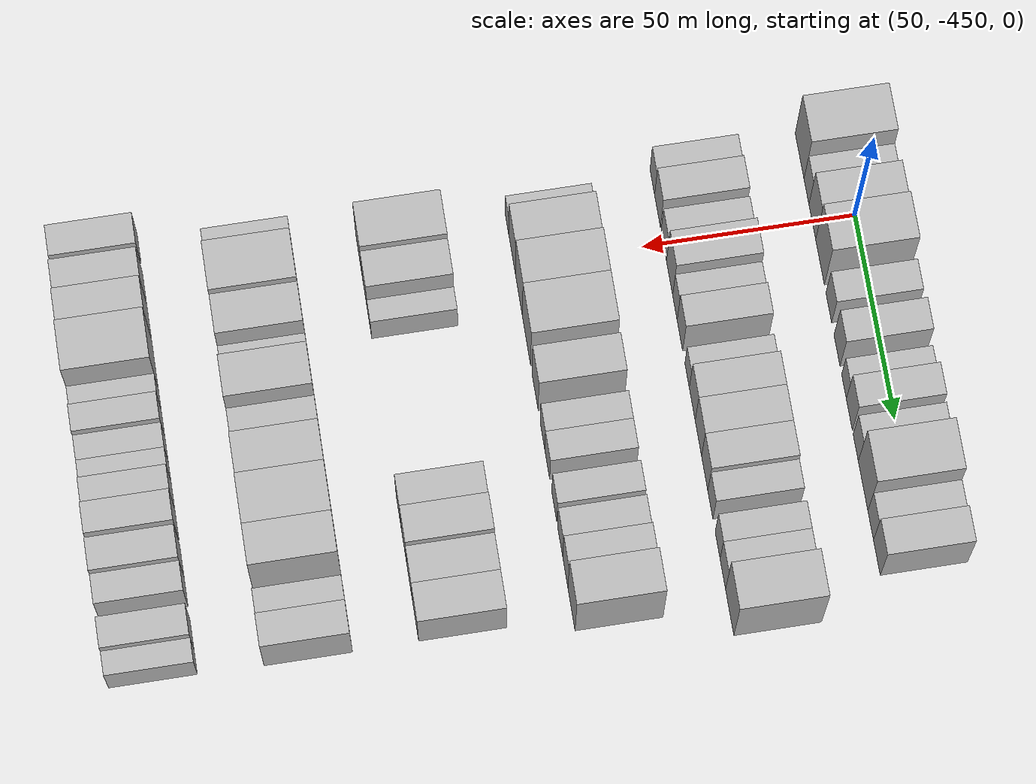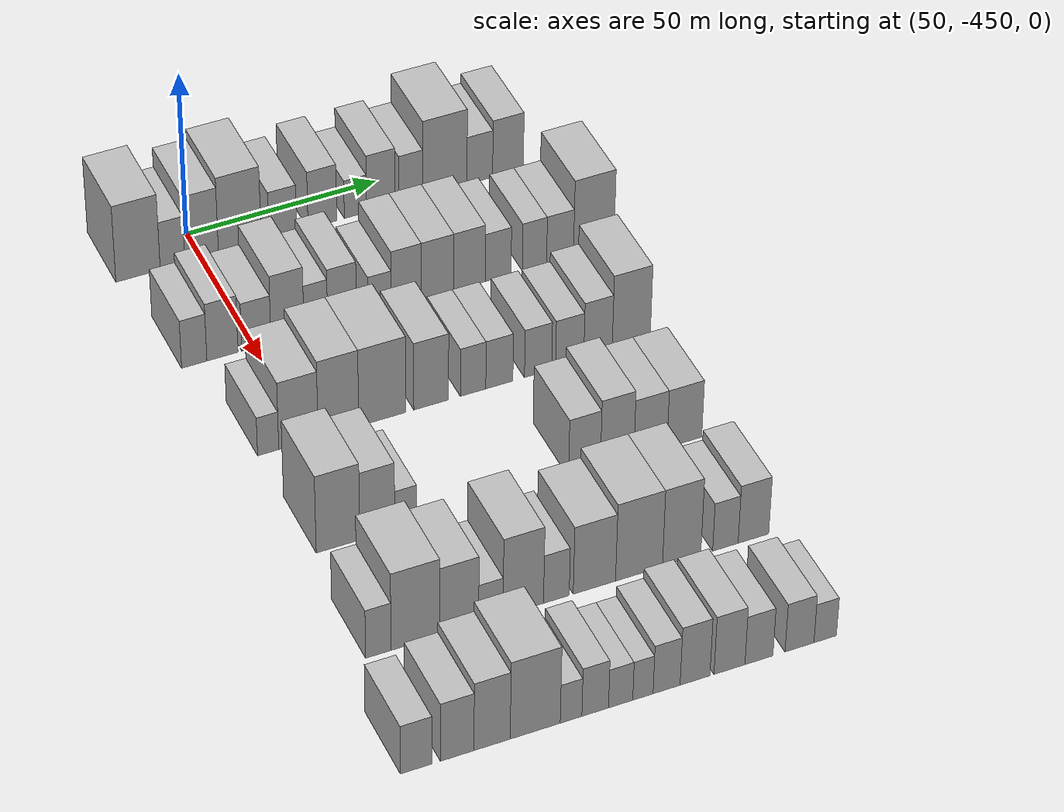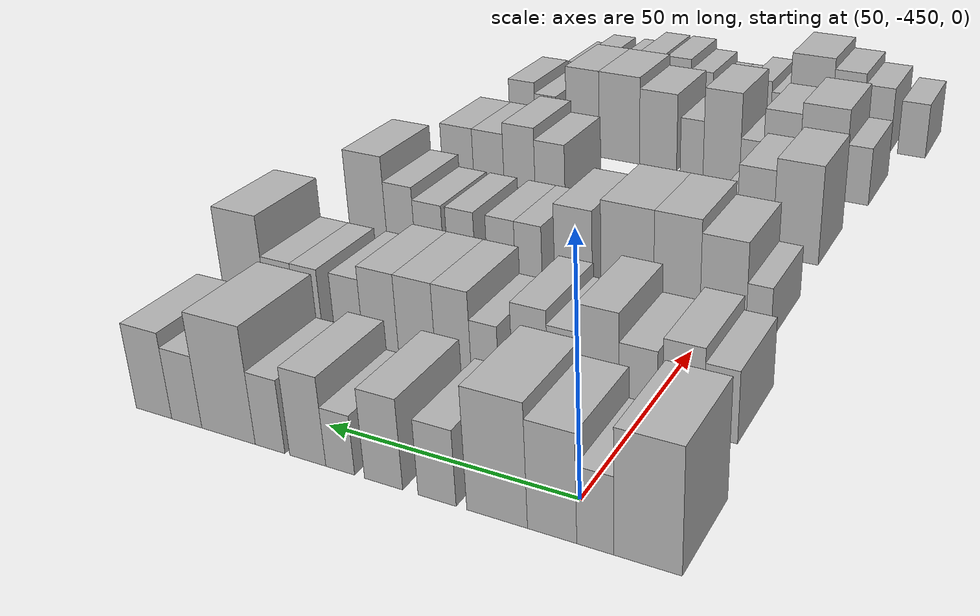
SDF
<sdf version="1.6">
 <world name="default">
  <model name="building_12">
   <static>1</static>
   <pose>50.0000 -466.4035 0 0.000000 0.000000 0.000000</pose>
   <link name="link">
    <pose>0 0 12.00 0 0 0</pose>
    <collision name="collision"><geometry><box><size>20.0000 11.4501 24.0000</size></box></geometry></collision>
    <visual name="visual">
     <cast_shadows>0</cast_shadows>
     <geometry><box><size>20.0000 11.4501 24.0000</size></box></geometry>
     <material>
      <script>
       <uri>model://HANNAS_wall/materials/scripts</uri>
       <uri>model://HANNAS_wall/materials/textures</uri>
       <name>vrc/HANNAS_wall</name>
      </script>
     </material>
    </visual>
   </link>
  </model>
  <model name="building_13">
   <static>1</static>
   <pose>50.0000 -457.4832 0 0.000000 0.000000 0.000000</pose>
   <link name="link">
    <pose>0 0 7.50 0 0 0</pose>
    <collision name="collision"><geometry><box><size>20.0000 6.3907 15.0000</size></box></geometry></collision>
    <visual name="visual">
     <cast_shadows>0</cast_shadows>
     <geometry><box><size>20.0000 6.3907 15.0000</size></box></geometry>
     <material>
      <script>
       <uri>model://HANNAS_wall/materials/scripts</uri>
       <uri>model://HANNAS_wall/materials/textures</uri>
       <name>vrc/HANNAS_wall</name>
      </script>
     </material>
    </visual>
   </link>
  </model>
  <model name="building_14">
   <static>1</static>
   <pose>50.0000 -449.9137 0 0.000000 0.000000 0.000000</pose>
   <link name="link">
    <pose>0 0 10.50 0 0 0</pose>
    <collision name="collision"><geometry><box><size>20.0000 8.7481 21.0000</size></box></geometry></collision>
    <visual name="visual">
     <cast_shadows>0</cast_shadows>
     <geometry><box><size>20.0000 8.7481 21.0000</size></box></geometry>
     <material>
      <script>
       <uri>model://HANNAS_wall/materials/scripts</uri>
       <uri>model://HANNAS_wall/materials/textures</uri>
       <name>vrc/HANNAS_wall</name>
      </script>
     </material>
    </visual>
   </link>
  </model>
  <model name="building_15">
   <static>1</static>
   <pose>50.0000 -439.9456 0 0.000000 0.000000 0.000000</pose>
   <link name="link">
    <pose>0 0 12.00 0 0 0</pose>
    <collision name="collision"><geometry><box><size>20.0000 11.1882 24.0000</size></box></geometry></collision>
    <visual name="visual">
     <cast_shadows>0</cast_shadows>
     <geometry><box><size>20.0000 11.1882 24.0000</size></box></geometry>
     <material>
      <script>
       <uri>model://HANNAS_wall/materials/scripts</uri>
       <uri>model://HANNAS_wall/materials/textures</uri>
       <name>vrc/HANNAS_wall</name>
      </script>
     </material>
    </visual>
   </link>
  </model>
  <model name="building_16">
   <static>1</static>
   <pose>50.0000 -428.6951 0 0.000000 0.000000 0.000000</pose>
   <link name="link">
    <pose>0 0 7.50 0 0 0</pose>
    <collision name="collision"><geometry><box><size>20.0000 7.3129 15.0000</size></box></geometry></collision>
    <visual name="visual">
     <cast_shadows>0</cast_shadows>
     <geometry><box><size>20.0000 7.3129 15.0000</size></box></geometry>
     <material>
      <script>
       <uri>model://HANNAS_wall/materials/scripts</uri>
       <uri>model://HANNAS_wall/materials/textures</uri>
       <name>vrc/HANNAS_wall</name>
      </script>
     </material>
    </visual>
   </link>
  </model>
  <model name="building_17">
   <static>1</static>
   <pose>50.0000 -418.2388 0 0.000000 0.000000 0.000000</pose>
   <link name="link">
    <pose>0 0 9.00 0 0 0</pose>
    <collision name="collision"><geometry><box><size>20.0000 7.5996 18.0000</size></box></geometry></collision>
    <visual name="visual">
     <cast_shadows>0</cast_shadows>
     <geometry><box><size>20.0000 7.5996 18.0000</size></box></geometry>
     <material>
      <script>
       <uri>model://HANNAS_wall/materials/scripts</uri>
       <uri>model://HANNAS_wall/materials/textures</uri>
       <name>vrc/HANNAS_wall</name>
      </script>
     </material>
    </visual>
   </link>
  </model>
  <model name="building_18">
   <static>1</static>
   <pose>50.0000 -409.4825 0 0.000000 0.000000 0.000000</pose>
   <link name="link">
    <pose>0 0 6.00 0 0 0</pose>
    <collision name="collision"><geometry><box><size>20.0000 5.9131 12.0000</size></box></geometry></collision>
    <visual name="visual">
     <cast_shadows>0</cast_shadows>
     <geometry><box><size>20.0000 5.9131 12.0000</size></box></geometry>
     <material>
      <script>
       <uri>model://HANNAS_wall/materials/scripts</uri>
       <uri>model://HANNAS_wall/materials/textures</uri>
       <name>vrc/HANNAS_wall</name>
      </script>
     </material>
    </visual>
   </link>
  </model>
  <model name="building_19">
   <static>1</static>
   <pose>50.0000 -402.7227 0 0.000000 0.000000 0.000000</pose>
   <link name="link">
    <pose>0 0 9.00 0 0 0</pose>
    <collision name="collision"><geometry><box><size>20.0000 7.6064 18.0000</size></box></geometry></collision>
    <visual name="visual">
     <cast_shadows>0</cast_shadows>
     <geometry><box><size>20.0000 7.6064 18.0000</size></box></geometry>
     <material>
      <script>
       <uri>model://HANNAS_wall/materials/scripts</uri>
       <uri>model://HANNAS_wall/materials/textures</uri>
       <name>vrc/HANNAS_wall</name>
      </script>
     </material>
    </visual>
   </link>
  </model>
  <model name="building_20">
   <static>1</static>
   <pose>50.0000 -394.7155 0 0.000000 0.000000 0.000000</pose>
   <link name="link">
    <pose>0 0 7.50 0 0 0</pose>
    <collision name="collision"><geometry><box><size>20.0000 6.4081 15.0000</size></box></geometry></collision>
    <visual name="visual">
     <cast_shadows>0</cast_shadows>
     <geometry><box><size>20.0000 6.4081 15.0000</size></box></geometry>
     <material>
      <script>
       <uri>model://HANNAS_wall/materials/scripts</uri>
       <uri>model://HANNAS_wall/materials/textures</uri>
       <name>vrc/HANNAS_wall</name>
      </script>
     </material>
    </visual>
   </link>
  </model>
  <model name="building_21">
   <static>1</static>
   <pose>50.0000 -385.5684 0 0.000000 0.000000 0.000000</pose>
   <link name="link">
    <pose>0 0 12.00 0 0 0</pose>
    <collision name="collision"><geometry><box><size>20.0000 11.8859 24.0000</size></box></geometry></collision>
    <visual name="visual">
     <cast_shadows>0</cast_shadows>
     <geometry><box><size>20.0000 11.8859 24.0000</size></box></geometry>
     <material>
      <script>
       <uri>model://HANNAS_wall/materials/scripts</uri>
       <uri>model://HANNAS_wall/materials/textures</uri>
       <name>vrc/HANNAS_wall</name>
      </script>
     </material>
    </visual>
   </link>
  </model>
  <model name="building_22">
   <static>1</static>
   <pose>50.0000 -376.1716 0 0.000000 0.000000 0.000000</pose>
   <link name="link">
    <pose>0 0 7.50 0 0 0</pose>
    <collision name="collision"><geometry><box><size>20.0000 6.9078 15.0000</size></box></geometry></collision>
    <visual name="visual">
     <cast_shadows>0</cast_shadows>
     <geometry><box><size>20.0000 6.9078 15.0000</size></box></geometry>
     <material>
      <script>
       <uri>model://HANNAS_wall/materials/scripts</uri>
       <uri>model://HANNAS_wall/materials/textures</uri>
       <name>vrc/HANNAS_wall</name>
      </script>
     </material>
    </visual>
   </link>
  </model>
  <model name="building_23">
   <static>1</static>
   <pose>50.0000 -368.5605 0 0.000000 0.000000 0.000000</pose>
   <link name="link">
    <pose>0 0 9.00 0 0 0</pose>
    <collision name="collision"><geometry><box><size>20.0000 8.3145 18.0000</size></box></geometry></collision>
    <visual name="visual">
     <cast_shadows>0</cast_shadows>
     <geometry><box><size>20.0000 8.3145 18.0000</size></box></geometry>
     <material>
      <script>
       <uri>model://HANNAS_wall/materials/scripts</uri>
       <uri>model://HANNAS_wall/materials/textures</uri>
       <name>vrc/HANNAS_wall</name>
      </script>
     </material>
    </visual>
   </link>
  </model>
  <model name="building_135">
   <static>1</static>
   <pose>85.0000 -465.2892 0 0.000000 0.000000 0.000000</pose>
   <link name="link">
    <pose>0 0 7.50 0 0 0</pose>
    <collision name="collision"><geometry><box><size>20.0000 6.4219 15.0000</size></box></geometry></collision>
    <visual name="visual">
     <cast_shadows>0</cast_shadows>
     <geometry><box><size>20.0000 6.4219 15.0000</size></box></geometry>
     <material>
      <script>
       <uri>model://HANNAS_wall/materials/scripts</uri>
       <uri>model://HANNAS_wall/materials/textures</uri>
       <name>vrc/HANNAS_wall</name>
      </script>
     </material>
    </visual>
   </link>
  </model>
  <model name="building_136">
   <static>1</static>
   <pose>85.0000 -458.1255 0 0.000000 0.000000 0.000000</pose>
   <link name="link">
    <pose>0 0 9.00 0 0 0</pose>
    <collision name="collision"><geometry><box><size>20.0000 7.9053 18.0000</size></box></geometry></collision>
    <visual name="visual">
     <cast_shadows>0</cast_shadows>
     <geometry><box><size>20.0000 7.9053 18.0000</size></box></geometry>
     <material>
      <script>
       <uri>model://HANNAS_wall/materials/scripts</uri>
       <uri>model://HANNAS_wall/materials/textures</uri>
       <name>vrc/HANNAS_wall</name>
      </script>
     </material>
    </visual>
   </link>
  </model>
  <model name="building_137">
   <static>1</static>
   <pose>85.0000 -449.4346 0 0.000000 0.000000 0.000000</pose>
   <link name="link">
    <pose>0 0 7.50 0 0 0</pose>
    <collision name="collision"><geometry><box><size>20.0000 7.4765 15.0000</size></box></geometry></collision>
    <visual name="visual">
     <cast_shadows>0</cast_shadows>
     <geometry><box><size>20.0000 7.4765 15.0000</size></box></geometry>
     <material>
      <script>
       <uri>model://HANNAS_wall/materials/scripts</uri>
       <uri>model://HANNAS_wall/materials/textures</uri>
       <name>vrc/HANNAS_wall</name>
      </script>
     </material>
    </visual>
   </link>
  </model>
  <model name="building_138">
   <static>1</static>
   <pose>85.0000 -441.4592 0 0.000000 0.000000 0.000000</pose>
   <link name="link">
    <pose>0 0 10.50 0 0 0</pose>
    <collision name="collision"><geometry><box><size>20.0000 8.4742 21.0000</size></box></geometry></collision>
    <visual name="visual">
     <cast_shadows>0</cast_shadows>
     <geometry><box><size>20.0000 8.4742 21.0000</size></box></geometry>
     <material>
      <script>
       <uri>model://HANNAS_wall/materials/scripts</uri>
       <uri>model://HANNAS_wall/materials/textures</uri>
       <name>vrc/HANNAS_wall</name>
      </script>
     </material>
    </visual>
   </link>
  </model>
  <model name="building_139">
   <static>1</static>
   <pose>85.0000 -434.1700 0 0.000000 0.000000 0.000000</pose>
   <link name="link">
    <pose>0 0 7.50 0 0 0</pose>
    <collision name="collision"><geometry><box><size>20.0000 6.1043 15.0000</size></box></geometry></collision>
    <visual name="visual">
     <cast_shadows>0</cast_shadows>
     <geometry><box><size>20.0000 6.1043 15.0000</size></box></geometry>
     <material>
      <script>
       <uri>model://HANNAS_wall/materials/scripts</uri>
       <uri>model://HANNAS_wall/materials/textures</uri>
       <name>vrc/HANNAS_wall</name>
      </script>
     </material>
    </visual>
   </link>
  </model>
  <model name="building_140">
   <static>1</static>
   <pose>85.0000 -427.3878 0 0.000000 0.000000 0.000000</pose>
   <link name="link">
    <pose>0 0 9.00 0 0 0</pose>
    <collision name="collision"><geometry><box><size>20.0000 7.4600 18.0000</size></box></geometry></collision>
    <visual name="visual">
     <cast_shadows>0</cast_shadows>
     <geometry><box><size>20.0000 7.4600 18.0000</size></box></geometry>
     <material>
      <script>
       <uri>model://HANNAS_wall/materials/scripts</uri>
       <uri>model://HANNAS_wall/materials/textures</uri>
       <name>vrc/HANNAS_wall</name>
      </script>
     </material>
    </visual>
   </link>
  </model>
  <model name="building_141">
   <static>1</static>
   <pose>85.0000 -417.6631 0 0.000000 0.000000 0.000000</pose>
   <link name="link">
    <pose>0 0 6.00 0 0 0</pose>
    <collision name="collision"><geometry><box><size>20.0000 5.9894 12.0000</size></box></geometry></collision>
    <visual name="visual">
     <cast_shadows>0</cast_shadows>
     <geometry><box><size>20.0000 5.9894 12.0000</size></box></geometry>
     <material>
      <script>
       <uri>model://HANNAS_wall/materials/scripts</uri>
       <uri>model://HANNAS_wall/materials/textures</uri>
       <name>vrc/HANNAS_wall</name>
      </script>
     </material>
    </visual>
   </link>
  </model>
  <model name="building_142">
   <static>1</static>
   <pose>85.0000 -410.7108 0 0.000000 0.000000 0.000000</pose>
   <link name="link">
    <pose>0 0 9.00 0 0 0</pose>
    <collision name="collision"><geometry><box><size>20.0000 7.9152 18.0000</size></box></geometry></collision>
    <visual name="visual">
     <cast_shadows>0</cast_shadows>
     <geometry><box><size>20.0000 7.9152 18.0000</size></box></geometry>
     <material>
      <script>
       <uri>model://HANNAS_wall/materials/scripts</uri>
       <uri>model://HANNAS_wall/materials/textures</uri>
       <name>vrc/HANNAS_wall</name>
      </script>
     </material>
    </visual>
   </link>
  </model>
  <model name="building_143">
   <static>1</static>
   <pose>85.0000 -402.5007 0 0.000000 0.000000 0.000000</pose>
   <link name="link">
    <pose>0 0 9.00 0 0 0</pose>
    <collision name="collision"><geometry><box><size>20.0000 8.5051 18.0000</size></box></geometry></collision>
    <visual name="visual">
     <cast_shadows>0</cast_shadows>
     <geometry><box><size>20.0000 8.5051 18.0000</size></box></geometry>
     <material>
      <script>
       <uri>model://HANNAS_wall/materials/scripts</uri>
       <uri>model://HANNAS_wall/materials/textures</uri>
       <name>vrc/HANNAS_wall</name>
      </script>
     </material>
    </visual>
   </link>
  </model>
  <model name="building_144">
   <static>1</static>
   <pose>85.0000 -394.1140 0 0.000000 0.000000 0.000000</pose>
   <link name="link">
    <pose>0 0 9.00 0 0 0</pose>
    <collision name="collision"><geometry><box><size>20.0000 8.2684 18.0000</size></box></geometry></collision>
    <visual name="visual">
     <cast_shadows>0</cast_shadows>
     <geometry><box><size>20.0000 8.2684 18.0000</size></box></geometry>
     <material>
      <script>
       <uri>model://HANNAS_wall/materials/scripts</uri>
       <uri>model://HANNAS_wall/materials/textures</uri>
       <name>vrc/HANNAS_wall</name>
      </script>
     </material>
    </visual>
   </link>
  </model>
  <model name="building_145">
   <static>1</static>
   <pose>85.0000 -386.5935 0 0.000000 0.000000 0.000000</pose>
   <link name="link">
    <pose>0 0 7.50 0 0 0</pose>
    <collision name="collision"><geometry><box><size>20.0000 6.7724 15.0000</size></box></geometry></collision>
    <visual name="visual">
     <cast_shadows>0</cast_shadows>
     <geometry><box><size>20.0000 6.7724 15.0000</size></box></geometry>
     <material>
      <script>
       <uri>model://HANNAS_wall/materials/scripts</uri>
       <uri>model://HANNAS_wall/materials/textures</uri>
       <name>vrc/HANNAS_wall</name>
      </script>
     </material>
    </visual>
   </link>
  </model>
  <model name="building_146">
   <static>1</static>
   <pose>85.0000 -376.9957 0 0.000000 0.000000 0.000000</pose>
   <link name="link">
    <pose>0 0 7.50 0 0 0</pose>
    <collision name="collision"><geometry><box><size>20.0000 6.4231 15.0000</size></box></geometry></collision>
    <visual name="visual">
     <cast_shadows>0</cast_shadows>
     <geometry><box><size>20.0000 6.4231 15.0000</size></box></geometry>
     <material>
      <script>
       <uri>model://HANNAS_wall/materials/scripts</uri>
       <uri>model://HANNAS_wall/materials/textures</uri>
       <name>vrc/HANNAS_wall</name>
      </script>
     </material>
    </visual>
   </link>
  </model>
  <model name="building_147">
   <static>1</static>
   <pose>85.0000 -370.2069 0 0.000000 0.000000 0.000000</pose>
   <link name="link">
    <pose>0 0 7.50 0 0 0</pose>
    <collision name="collision"><geometry><box><size>20.0000 7.1545 15.0000</size></box></geometry></collision>
    <visual name="visual">
     <cast_shadows>0</cast_shadows>
     <geometry><box><size>20.0000 7.1545 15.0000</size></box></geometry>
     <material>
      <script>
       <uri>model://HANNAS_wall/materials/scripts</uri>
       <uri>model://HANNAS_wall/materials/textures</uri>
       <name>vrc/HANNAS_wall</name>
      </script>
     </material>
    </visual>
   </link>
  </model>
  <model name="building_148">
   <static>1</static>
   <pose>85.0000 -361.2239 0 0.000000 0.000000 0.000000</pose>
   <link name="link">
    <pose>0 0 12.00 0 0 0</pose>
    <collision name="collision"><geometry><box><size>20.0000 10.8116 24.0000</size></box></geometry></collision>
    <visual name="visual">
     <cast_shadows>0</cast_shadows>
     <geometry><box><size>20.0000 10.8116 24.0000</size></box></geometry>
     <material>
      <script>
       <uri>model://HANNAS_wall/materials/scripts</uri>
       <uri>model://HANNAS_wall/materials/textures</uri>
       <name>vrc/HANNAS_wall</name>
      </script>
     </material>
    </visual>
   </link>
  </model>
  <model name="building_267">
   <static>1</static>
   <pose>120.0000 -460.3468 0 0.000000 0.000000 0.000000</pose>
   <link name="link">
    <pose>0 0 6.00 0 0 0</pose>
    <collision name="collision"><geometry><box><size>20.0000 5.2969 12.0000</size></box></geometry></collision>
    <visual name="visual">
     <cast_shadows>0</cast_shadows>
     <geometry><box><size>20.0000 5.2969 12.0000</size></box></geometry>
     <material>
      <script>
       <uri>model://HANNAS_wall/materials/scripts</uri>
       <uri>model://HANNAS_wall/materials/textures</uri>
       <name>vrc/HANNAS_wall</name>
      </script>
     </material>
    </visual>
   </link>
  </model>
  <model name="building_268">
   <static>1</static>
   <pose>120.0000 -452.7520 0 0.000000 0.000000 0.000000</pose>
   <link name="link">
    <pose>0 0 10.50 0 0 0</pose>
    <collision name="collision"><geometry><box><size>20.0000 9.8929 21.0000</size></box></geometry></collision>
    <visual name="visual">
     <cast_shadows>0</cast_shadows>
     <geometry><box><size>20.0000 9.8929 21.0000</size></box></geometry>
     <material>
      <script>
       <uri>model://HANNAS_wall/materials/scripts</uri>
       <uri>model://HANNAS_wall/materials/textures</uri>
       <name>vrc/HANNAS_wall</name>
      </script>
     </material>
    </visual>
   </link>
  </model>
  <model name="building_269">
   <static>1</static>
   <pose>120.0000 -442.6767 0 0.000000 0.000000 0.000000</pose>
   <link name="link">
    <pose>0 0 12.00 0 0 0</pose>
    <collision name="collision"><geometry><box><size>20.0000 10.2576 24.0000</size></box></geometry></collision>
    <visual name="visual">
     <cast_shadows>0</cast_shadows>
     <geometry><box><size>20.0000 10.2576 24.0000</size></box></geometry>
     <material>
      <script>
       <uri>model://HANNAS_wall/materials/scripts</uri>
       <uri>model://HANNAS_wall/materials/textures</uri>
       <name>vrc/HANNAS_wall</name>
      </script>
     </material>
    </visual>
   </link>
  </model>
  <model name="building_270">
   <static>1</static>
   <pose>120.0000 -431.5740 0 0.000000 0.000000 0.000000</pose>
   <link name="link">
    <pose>0 0 12.00 0 0 0</pose>
    <collision name="collision"><geometry><box><size>20.0000 11.9480 24.0000</size></box></geometry></collision>
    <visual name="visual">
     <cast_shadows>0</cast_shadows>
     <geometry><box><size>20.0000 11.9480 24.0000</size></box></geometry>
     <material>
      <script>
       <uri>model://HANNAS_wall/materials/scripts</uri>
       <uri>model://HANNAS_wall/materials/textures</uri>
       <name>vrc/HANNAS_wall</name>
      </script>
     </material>
    </visual>
   </link>
  </model>
  <model name="building_271">
   <static>1</static>
   <pose>120.0000 -419.1545 0 0.000000 0.000000 0.000000</pose>
   <link name="link">
    <pose>0 0 10.50 0 0 0</pose>
    <collision name="collision"><geometry><box><size>20.0000 8.8909 21.0000</size></box></geometry></collision>
    <visual name="visual">
     <cast_shadows>0</cast_shadows>
     <geometry><box><size>20.0000 8.8909 21.0000</size></box></geometry>
     <material>
      <script>
       <uri>model://HANNAS_wall/materials/scripts</uri>
       <uri>model://HANNAS_wall/materials/textures</uri>
       <name>vrc/HANNAS_wall</name>
      </script>
     </material>
    </visual>
   </link>
  </model>
  <model name="building_272">
   <static>1</static>
   <pose>120.0000 -408.4423 0 0.000000 0.000000 0.000000</pose>
   <link name="link">
    <pose>0 0 7.50 0 0 0</pose>
    <collision name="collision"><geometry><box><size>20.0000 6.5335 15.0000</size></box></geometry></collision>
    <visual name="visual">
     <cast_shadows>0</cast_shadows>
     <geometry><box><size>20.0000 6.5335 15.0000</size></box></geometry>
     <material>
      <script>
       <uri>model://HANNAS_wall/materials/scripts</uri>
       <uri>model://HANNAS_wall/materials/textures</uri>
       <name>vrc/HANNAS_wall</name>
      </script>
     </material>
    </visual>
   </link>
  </model>
  <model name="building_273">
   <static>1</static>
   <pose>120.0000 -401.6878 0 0.000000 0.000000 0.000000</pose>
   <link name="link">
    <pose>0 0 7.50 0 0 0</pose>
    <collision name="collision"><geometry><box><size>20.0000 6.9755 15.0000</size></box></geometry></collision>
    <visual name="visual">
     <cast_shadows>0</cast_shadows>
     <geometry><box><size>20.0000 6.9755 15.0000</size></box></geometry>
     <material>
      <script>
       <uri>model://HANNAS_wall/materials/scripts</uri>
       <uri>model://HANNAS_wall/materials/textures</uri>
       <name>vrc/HANNAS_wall</name>
      </script>
     </material>
    </visual>
   </link>
  </model>
  <model name="building_274">
   <static>1</static>
   <pose>120.0000 -391.6861 0 0.000000 0.000000 0.000000</pose>
   <link name="link">
    <pose>0 0 7.50 0 0 0</pose>
    <collision name="collision"><geometry><box><size>20.0000 7.0279 15.0000</size></box></geometry></collision>
    <visual name="visual">
     <cast_shadows>0</cast_shadows>
     <geometry><box><size>20.0000 7.0279 15.0000</size></box></geometry>
     <material>
      <script>
       <uri>model://HANNAS_wall/materials/scripts</uri>
       <uri>model://HANNAS_wall/materials/textures</uri>
       <name>vrc/HANNAS_wall</name>
      </script>
     </material>
    </visual>
   </link>
  </model>
  <model name="building_275">
   <static>1</static>
   <pose>120.0000 -383.4972 0 0.000000 0.000000 0.000000</pose>
   <link name="link">
    <pose>0 0 7.50 0 0 0</pose>
    <collision name="collision"><geometry><box><size>20.0000 7.3499 15.0000</size></box></geometry></collision>
    <visual name="visual">
     <cast_shadows>0</cast_shadows>
     <geometry><box><size>20.0000 7.3499 15.0000</size></box></geometry>
     <material>
      <script>
       <uri>model://HANNAS_wall/materials/scripts</uri>
       <uri>model://HANNAS_wall/materials/textures</uri>
       <name>vrc/HANNAS_wall</name>
      </script>
     </material>
    </visual>
   </link>
  </model>
  <model name="building_276">
   <static>1</static>
   <pose>120.0000 -376.1194 0 0.000000 0.000000 0.000000</pose>
   <link name="link">
    <pose>0 0 9.00 0 0 0</pose>
    <collision name="collision"><geometry><box><size>20.0000 7.4057 18.0000</size></box></geometry></collision>
    <visual name="visual">
     <cast_shadows>0</cast_shadows>
     <geometry><box><size>20.0000 7.4057 18.0000</size></box></geometry>
     <material>
      <script>
       <uri>model://HANNAS_wall/materials/scripts</uri>
       <uri>model://HANNAS_wall/materials/textures</uri>
       <name>vrc/HANNAS_wall</name>
      </script>
     </material>
    </visual>
   </link>
  </model>
  <model name="building_277">
   <static>1</static>
   <pose>120.0000 -367.4332 0 0.000000 0.000000 0.000000</pose>
   <link name="link">
    <pose>0 0 12.00 0 0 0</pose>
    <collision name="collision"><geometry><box><size>20.0000 9.9667 24.0000</size></box></geometry></collision>
    <visual name="visual">
     <cast_shadows>0</cast_shadows>
     <geometry><box><size>20.0000 9.9667 24.0000</size></box></geometry>
     <material>
      <script>
       <uri>model://HANNAS_wall/materials/scripts</uri>
       <uri>model://HANNAS_wall/materials/textures</uri>
       <name>vrc/HANNAS_wall</name>
      </script>
     </material>
    </visual>
   </link>
  </model>
  <model name="building_391">
   <static>1</static>
   <pose>155.0000 -457.1366 0 0.000000 0.000000 0.000000</pose>
   <link name="link">
    <pose>0 0 12.00 0 0 0</pose>
    <collision name="collision"><geometry><box><size>20.0000 10.7563 24.0000</size></box></geometry></collision>
    <visual name="visual">
     <cast_shadows>0</cast_shadows>
     <geometry><box><size>20.0000 10.7563 24.0000</size></box></geometry>
     <material>
      <script>
       <uri>model://HANNAS_wall/materials/scripts</uri>
       <uri>model://HANNAS_wall/materials/textures</uri>
       <name>vrc/HANNAS_wall</name>
      </script>
     </material>
    </visual>
   </link>
  </model>
  <model name="building_392">
   <static>1</static>
   <pose>155.0000 -447.4472 0 0.000000 0.000000 0.000000</pose>
   <link name="link">
    <pose>0 0 10.50 0 0 0</pose>
    <collision name="collision"><geometry><box><size>20.0000 8.6224 21.0000</size></box></geometry></collision>
    <visual name="visual">
     <cast_shadows>0</cast_shadows>
     <geometry><box><size>20.0000 8.6224 21.0000</size></box></geometry>
     <material>
      <script>
       <uri>model://HANNAS_wall/materials/scripts</uri>
       <uri>model://HANNAS_wall/materials/textures</uri>
       <name>vrc/HANNAS_wall</name>
      </script>
     </material>
    </visual>
   </link>
  </model>
  <model name="building_393">
   <static>1</static>
   <pose>155.0000 -440.4294 0 0.000000 0.000000 0.000000</pose>
   <link name="link">
    <pose>0 0 6.00 0 0 0</pose>
    <collision name="collision"><geometry><box><size>20.0000 5.4133 12.0000</size></box></geometry></collision>
    <visual name="visual">
     <cast_shadows>0</cast_shadows>
     <geometry><box><size>20.0000 5.4133 12.0000</size></box></geometry>
     <material>
      <script>
       <uri>model://HANNAS_wall/materials/scripts</uri>
       <uri>model://HANNAS_wall/materials/textures</uri>
       <name>vrc/HANNAS_wall</name>
      </script>
     </material>
    </visual>
   </link>
  </model>
  <model name="building_394">
   <static>1</static>
   <pose>155.0000 -395.5953 0 0.000000 0.000000 0.000000</pose>
   <link name="link">
    <pose>0 0 9.00 0 0 0</pose>
    <collision name="collision"><geometry><box><size>20.0000 8.0850 18.0000</size></box></geometry></collision>
    <visual name="visual">
     <cast_shadows>0</cast_shadows>
     <geometry><box><size>20.0000 8.0850 18.0000</size></box></geometry>
     <material>
      <script>
       <uri>model://HANNAS_wall/materials/scripts</uri>
       <uri>model://HANNAS_wall/materials/textures</uri>
       <name>vrc/HANNAS_wall</name>
      </script>
     </material>
    </visual>
   </link>
  </model>
  <model name="building_395">
   <static>1</static>
   <pose>155.0000 -387.2845 0 0.000000 0.000000 0.000000</pose>
   <link name="link">
    <pose>0 0 10.50 0 0 0</pose>
    <collision name="collision"><geometry><box><size>20.0000 8.5365 21.0000</size></box></geometry></collision>
    <visual name="visual">
     <cast_shadows>0</cast_shadows>
     <geometry><box><size>20.0000 8.5365 21.0000</size></box></geometry>
     <material>
      <script>
       <uri>model://HANNAS_wall/materials/scripts</uri>
       <uri>model://HANNAS_wall/materials/textures</uri>
       <name>vrc/HANNAS_wall</name>
      </script>
     </material>
    </visual>
   </link>
  </model>
  <model name="building_396">
   <static>1</static>
   <pose>155.0000 -378.7510 0 0.000000 0.000000 0.000000</pose>
   <link name="link">
    <pose>0 0 9.00 0 0 0</pose>
    <collision name="collision"><geometry><box><size>20.0000 8.5305 18.0000</size></box></geometry></collision>
    <visual name="visual">
     <cast_shadows>0</cast_shadows>
     <geometry><box><size>20.0000 8.5305 18.0000</size></box></geometry>
     <material>
      <script>
       <uri>model://HANNAS_wall/materials/scripts</uri>
       <uri>model://HANNAS_wall/materials/textures</uri>
       <name>vrc/HANNAS_wall</name>
      </script>
     </material>
    </visual>
   </link>
  </model>
  <model name="building_397">
   <static>1</static>
   <pose>155.0000 -370.0155 0 0.000000 0.000000 0.000000</pose>
   <link name="link">
    <pose>0 0 9.00 0 0 0</pose>
    <collision name="collision"><geometry><box><size>20.0000 8.9405 18.0000</size></box></geometry></collision>
    <visual name="visual">
     <cast_shadows>0</cast_shadows>
     <geometry><box><size>20.0000 8.9405 18.0000</size></box></geometry>
     <material>
      <script>
       <uri>model://HANNAS_wall/materials/scripts</uri>
       <uri>model://HANNAS_wall/materials/textures</uri>
       <name>vrc/HANNAS_wall</name>
      </script>
     </material>
    </visual>
   </link>
  </model>
  <model name="building_515">
   <static>1</static>
   <pose>190.0000 -461.8117 0 0.000000 0.000000 0.000000</pose>
   <link name="link">
    <pose>0 0 7.50 0 0 0</pose>
    <collision name="collision"><geometry><box><size>20.0000 6.1347 15.0000</size></box></geometry></collision>
    <visual name="visual">
     <cast_shadows>0</cast_shadows>
     <geometry><box><size>20.0000 6.1347 15.0000</size></box></geometry>
     <material>
      <script>
       <uri>model://HANNAS_wall/materials/scripts</uri>
       <uri>model://HANNAS_wall/materials/textures</uri>
       <name>vrc/HANNAS_wall</name>
      </script>
     </material>
    </visual>
   </link>
  </model>
  <model name="building_516">
   <static>1</static>
   <pose>190.0000 -452.8405 0 0.000000 0.000000 0.000000</pose>
   <link name="link">
    <pose>0 0 12.00 0 0 0</pose>
    <collision name="collision"><geometry><box><size>20.0000 11.8078 24.0000</size></box></geometry></collision>
    <visual name="visual">
     <cast_shadows>0</cast_shadows>
     <geometry><box><size>20.0000 11.8078 24.0000</size></box></geometry>
     <material>
      <script>
       <uri>model://HANNAS_wall/materials/scripts</uri>
       <uri>model://HANNAS_wall/materials/textures</uri>
       <name>vrc/HANNAS_wall</name>
      </script>
     </material>
    </visual>
   </link>
  </model>
  <model name="building_517">
   <static>1</static>
   <pose>190.0000 -442.2296 0 0.000000 0.000000 0.000000</pose>
   <link name="link">
    <pose>0 0 10.50 0 0 0</pose>
    <collision name="collision"><geometry><box><size>20.0000 9.4138 21.0000</size></box></geometry></collision>
    <visual name="visual">
     <cast_shadows>0</cast_shadows>
     <geometry><box><size>20.0000 9.4138 21.0000</size></box></geometry>
     <material>
      <script>
       <uri>model://HANNAS_wall/materials/scripts</uri>
       <uri>model://HANNAS_wall/materials/textures</uri>
       <name>vrc/HANNAS_wall</name>
      </script>
     </material>
    </visual>
   </link>
  </model>
  <model name="building_518">
   <static>1</static>
   <pose>190.0000 -434.5472 0 0.000000 0.000000 0.000000</pose>
   <link name="link">
    <pose>0 0 6.00 0 0 0</pose>
    <collision name="collision"><geometry><box><size>20.0000 5.9510 12.0000</size></box></geometry></collision>
    <visual name="visual">
     <cast_shadows>0</cast_shadows>
     <geometry><box><size>20.0000 5.9510 12.0000</size></box></geometry>
     <material>
      <script>
       <uri>model://HANNAS_wall/materials/scripts</uri>
       <uri>model://HANNAS_wall/materials/textures</uri>
       <name>vrc/HANNAS_wall</name>
      </script>
     </material>
    </visual>
   </link>
  </model>
  <model name="building_519">
   <static>1</static>
   <pose>190.0000 -426.6036 0 0.000000 0.000000 0.000000</pose>
   <link name="link">
    <pose>0 0 12.00 0 0 0</pose>
    <collision name="collision"><geometry><box><size>20.0000 9.9364 24.0000</size></box></geometry></collision>
    <visual name="visual">
     <cast_shadows>0</cast_shadows>
     <geometry><box><size>20.0000 9.9364 24.0000</size></box></geometry>
     <material>
      <script>
       <uri>model://HANNAS_wall/materials/scripts</uri>
       <uri>model://HANNAS_wall/materials/textures</uri>
       <name>vrc/HANNAS_wall</name>
      </script>
     </material>
    </visual>
   </link>
  </model>
  <model name="building_520">
   <static>1</static>
   <pose>190.0000 -418.4668 0 0.000000 0.000000 0.000000</pose>
   <link name="link">
    <pose>0 0 7.50 0 0 0</pose>
    <collision name="collision"><geometry><box><size>20.0000 6.3371 15.0000</size></box></geometry></collision>
    <visual name="visual">
     <cast_shadows>0</cast_shadows>
     <geometry><box><size>20.0000 6.3371 15.0000</size></box></geometry>
     <material>
      <script>
       <uri>model://HANNAS_wall/materials/scripts</uri>
       <uri>model://HANNAS_wall/materials/textures</uri>
       <name>vrc/HANNAS_wall</name>
      </script>
     </material>
    </visual>
   </link>
  </model>
  <model name="building_521">
   <static>1</static>
   <pose>190.0000 -409.0585 0 0.000000 0.000000 0.000000</pose>
   <link name="link">
    <pose>0 0 10.50 0 0 0</pose>
    <collision name="collision"><geometry><box><size>20.0000 10.4795 21.0000</size></box></geometry></collision>
    <visual name="visual">
     <cast_shadows>0</cast_shadows>
     <geometry><box><size>20.0000 10.4795 21.0000</size></box></geometry>
     <material>
      <script>
       <uri>model://HANNAS_wall/materials/scripts</uri>
       <uri>model://HANNAS_wall/materials/textures</uri>
       <name>vrc/HANNAS_wall</name>
      </script>
     </material>
    </visual>
   </link>
  </model>
  <model name="building_522">
   <static>1</static>
   <pose>190.0000 -397.9683 0 0.000000 0.000000 0.000000</pose>
   <link name="link">
    <pose>0 0 12.00 0 0 0</pose>
    <collision name="collision"><geometry><box><size>20.0000 11.7010 24.0000</size></box></geometry></collision>
    <visual name="visual">
     <cast_shadows>0</cast_shadows>
     <geometry><box><size>20.0000 11.7010 24.0000</size></box></geometry>
     <material>
      <script>
       <uri>model://HANNAS_wall/materials/scripts</uri>
       <uri>model://HANNAS_wall/materials/textures</uri>
       <name>vrc/HANNAS_wall</name>
      </script>
     </material>
    </visual>
   </link>
  </model>
  <model name="building_523">
   <static>1</static>
   <pose>190.0000 -387.3149 0 0.000000 0.000000 0.000000</pose>
   <link name="link">
    <pose>0 0 12.00 0 0 0</pose>
    <collision name="collision"><geometry><box><size>20.0000 9.6057 24.0000</size></box></geometry></collision>
    <visual name="visual">
     <cast_shadows>0</cast_shadows>
     <geometry><box><size>20.0000 9.6057 24.0000</size></box></geometry>
     <material>
      <script>
       <uri>model://HANNAS_wall/materials/scripts</uri>
       <uri>model://HANNAS_wall/materials/textures</uri>
       <name>vrc/HANNAS_wall</name>
      </script>
     </material>
    </visual>
   </link>
  </model>
  <model name="building_524">
   <static>1</static>
   <pose>190.0000 -376.2970 0 0.000000 0.000000 0.000000</pose>
   <link name="link">
    <pose>0 0 7.50 0 0 0</pose>
    <collision name="collision"><geometry><box><size>20.0000 6.4302 15.0000</size></box></geometry></collision>
    <visual name="visual">
     <cast_shadows>0</cast_shadows>
     <geometry><box><size>20.0000 6.4302 15.0000</size></box></geometry>
     <material>
      <script>
       <uri>model://HANNAS_wall/materials/scripts</uri>
       <uri>model://HANNAS_wall/materials/textures</uri>
       <name>vrc/HANNAS_wall</name>
      </script>
     </material>
    </visual>
   </link>
  </model>
  <model name="building_525">
   <static>1</static>
   <pose>190.0000 -369.2129 0 0.000000 0.000000 0.000000</pose>
   <link name="link">
    <pose>0 0 9.00 0 0 0</pose>
    <collision name="collision"><geometry><box><size>20.0000 7.7380 18.0000</size></box></geometry></collision>
    <visual name="visual">
     <cast_shadows>0</cast_shadows>
     <geometry><box><size>20.0000 7.7380 18.0000</size></box></geometry>
     <material>
      <script>
       <uri>model://HANNAS_wall/materials/scripts</uri>
       <uri>model://HANNAS_wall/materials/textures</uri>
       <name>vrc/HANNAS_wall</name>
      </script>
     </material>
    </visual>
   </link>
  </model>
  <model name="building_639">
   <static>1</static>
   <pose>225.0000 -467.5483 0 0.000000 0.000000 0.000000</pose>
   <link name="link">
    <pose>0 0 7.50 0 0 0</pose>
    <collision name="collision"><geometry><box><size>20.0000 7.4391 15.0000</size></box></geometry></collision>
    <visual name="visual">
     <cast_shadows>0</cast_shadows>
     <geometry><box><size>20.0000 7.4391 15.0000</size></box></geometry>
     <material>
      <script>
       <uri>model://HANNAS_wall/materials/scripts</uri>
       <uri>model://HANNAS_wall/materials/textures</uri>
       <name>vrc/HANNAS_wall</name>
      </script>
     </material>
    </visual>
   </link>
  </model>
  <model name="building_640">
   <static>1</static>
   <pose>225.0000 -457.8564 0 0.000000 0.000000 0.000000</pose>
   <link name="link">
    <pose>0 0 9.00 0 0 0</pose>
    <collision name="collision"><geometry><box><size>20.0000 7.9447 18.0000</size></box></geometry></collision>
    <visual name="visual">
     <cast_shadows>0</cast_shadows>
     <geometry><box><size>20.0000 7.9447 18.0000</size></box></geometry>
     <material>
      <script>
       <uri>model://HANNAS_wall/materials/scripts</uri>
       <uri>model://HANNAS_wall/materials/textures</uri>
       <name>vrc/HANNAS_wall</name>
      </script>
     </material>
    </visual>
   </link>
  </model>
  <model name="building_641">
   <static>1</static>
   <pose>225.0000 -449.5748 0 0.000000 0.000000 0.000000</pose>
   <link name="link">
    <pose>0 0 10.50 0 0 0</pose>
    <collision name="collision"><geometry><box><size>20.0000 8.6185 21.0000</size></box></geometry></collision>
    <visual name="visual">
     <cast_shadows>0</cast_shadows>
     <geometry><box><size>20.0000 8.6185 21.0000</size></box></geometry>
     <material>
      <script>
       <uri>model://HANNAS_wall/materials/scripts</uri>
       <uri>model://HANNAS_wall/materials/textures</uri>
       <name>vrc/HANNAS_wall</name>
      </script>
     </material>
    </visual>
   </link>
  </model>
  <model name="building_642">
   <static>1</static>
   <pose>225.0000 -439.2839 0 0.000000 0.000000 0.000000</pose>
   <link name="link">
    <pose>0 0 12.00 0 0 0</pose>
    <collision name="collision"><geometry><box><size>20.0000 11.9633 24.0000</size></box></geometry></collision>
    <visual name="visual">
     <cast_shadows>0</cast_shadows>
     <geometry><box><size>20.0000 11.9633 24.0000</size></box></geometry>
     <material>
      <script>
       <uri>model://HANNAS_wall/materials/scripts</uri>
       <uri>model://HANNAS_wall/materials/textures</uri>
       <name>vrc/HANNAS_wall</name>
      </script>
     </material>
    </visual>
   </link>
  </model>
  <model name="building_643">
   <static>1</static>
   <pose>225.0000 -430.6983 0 0.000000 0.000000 0.000000</pose>
   <link name="link">
    <pose>0 0 6.00 0 0 0</pose>
    <collision name="collision"><geometry><box><size>20.0000 5.2079 12.0000</size></box></geometry></collision>
    <visual name="visual">
     <cast_shadows>0</cast_shadows>
     <geometry><box><size>20.0000 5.2079 12.0000</size></box></geometry>
     <material>
      <script>
       <uri>model://HANNAS_wall/materials/scripts</uri>
       <uri>model://HANNAS_wall/materials/textures</uri>
       <name>vrc/HANNAS_wall</name>
      </script>
     </material>
    </visual>
   </link>
  </model>
  <model name="building_644">
   <static>1</static>
   <pose>225.0000 -424.8823 0 0.000000 0.000000 0.000000</pose>
   <link name="link">
    <pose>0 0 7.50 0 0 0</pose>
    <collision name="collision"><geometry><box><size>20.0000 6.4241 15.0000</size></box></geometry></collision>
    <visual name="visual">
     <cast_shadows>0</cast_shadows>
     <geometry><box><size>20.0000 6.4241 15.0000</size></box></geometry>
     <material>
      <script>
       <uri>model://HANNAS_wall/materials/scripts</uri>
       <uri>model://HANNAS_wall/materials/textures</uri>
       <name>vrc/HANNAS_wall</name>
      </script>
     </material>
    </visual>
   </link>
  </model>
  <model name="building_645">
   <static>1</static>
   <pose>225.0000 -418.7368 0 0.000000 0.000000 0.000000</pose>
   <link name="link">
    <pose>0 0 6.00 0 0 0</pose>
    <collision name="collision"><geometry><box><size>20.0000 5.8670 12.0000</size></box></geometry></collision>
    <visual name="visual">
     <cast_shadows>0</cast_shadows>
     <geometry><box><size>20.0000 5.8670 12.0000</size></box></geometry>
     <material>
      <script>
       <uri>model://HANNAS_wall/materials/scripts</uri>
       <uri>model://HANNAS_wall/materials/textures</uri>
       <name>vrc/HANNAS_wall</name>
      </script>
     </material>
    </visual>
   </link>
  </model>
  <model name="building_646">
   <static>1</static>
   <pose>225.0000 -413.3316 0 0.000000 0.000000 0.000000</pose>
   <link name="link">
    <pose>0 0 6.00 0 0 0</pose>
    <collision name="collision"><geometry><box><size>20.0000 4.9434 12.0000</size></box></geometry></collision>
    <visual name="visual">
     <cast_shadows>0</cast_shadows>
     <geometry><box><size>20.0000 4.9434 12.0000</size></box></geometry>
     <material>
      <script>
       <uri>model://HANNAS_wall/materials/scripts</uri>
       <uri>model://HANNAS_wall/materials/textures</uri>
       <name>vrc/HANNAS_wall</name>
      </script>
     </material>
    </visual>
   </link>
  </model>
  <model name="building_647">
   <static>1</static>
   <pose>225.0000 -407.5706 0 0.000000 0.000000 0.000000</pose>
   <link name="link">
    <pose>0 0 7.50 0 0 0</pose>
    <collision name="collision"><geometry><box><size>20.0000 6.5786 15.0000</size></box></geometry></collision>
    <visual name="visual">
     <cast_shadows>0</cast_shadows>
     <geometry><box><size>20.0000 6.5786 15.0000</size></box></geometry>
     <material>
      <script>
       <uri>model://HANNAS_wall/materials/scripts</uri>
       <uri>model://HANNAS_wall/materials/textures</uri>
       <name>vrc/HANNAS_wall</name>
      </script>
     </material>
    </visual>
   </link>
  </model>
  <model name="building_648">
   <static>1</static>
   <pose>225.0000 -400.6310 0 0.000000 0.000000 0.000000</pose>
   <link name="link">
    <pose>0 0 9.00 0 0 0</pose>
    <collision name="collision"><geometry><box><size>20.0000 7.3006 18.0000</size></box></geometry></collision>
    <visual name="visual">
     <cast_shadows>0</cast_shadows>
     <geometry><box><size>20.0000 7.3006 18.0000</size></box></geometry>
     <material>
      <script>
       <uri>model://HANNAS_wall/materials/scripts</uri>
       <uri>model://HANNAS_wall/materials/textures</uri>
       <name>vrc/HANNAS_wall</name>
      </script>
     </material>
    </visual>
   </link>
  </model>
  <model name="building_649">
   <static>1</static>
   <pose>225.0000 -392.1789 0 0.000000 0.000000 0.000000</pose>
   <link name="link">
    <pose>0 0 9.00 0 0 0</pose>
    <collision name="collision"><geometry><box><size>20.0000 7.6036 18.0000</size></box></geometry></collision>
    <visual name="visual">
     <cast_shadows>0</cast_shadows>
     <geometry><box><size>20.0000 7.6036 18.0000</size></box></geometry>
     <material>
      <script>
       <uri>model://HANNAS_wall/materials/scripts</uri>
       <uri>model://HANNAS_wall/materials/textures</uri>
       <name>vrc/HANNAS_wall</name>
      </script>
     </material>
    </visual>
   </link>
  </model>
  <model name="building_650">
   <static>1</static>
   <pose>225.0000 -384.9260 0 0.000000 0.000000 0.000000</pose>
   <link name="link">
    <pose>0 0 7.50 0 0 0</pose>
    <collision name="collision"><geometry><box><size>20.0000 6.9021 15.0000</size></box></geometry></collision>
    <visual name="visual">
     <cast_shadows>0</cast_shadows>
     <geometry><box><size>20.0000 6.9021 15.0000</size></box></geometry>
     <material>
      <script>
       <uri>model://HANNAS_wall/materials/scripts</uri>
       <uri>model://HANNAS_wall/materials/textures</uri>
       <name>vrc/HANNAS_wall</name>
      </script>
     </material>
    </visual>
   </link>
  </model>
  <model name="building_651">
   <static>1</static>
   <pose>225.0000 -374.8956 0 0.000000 0.000000 0.000000</pose>
   <link name="link">
    <pose>0 0 7.50 0 0 0</pose>
    <collision name="collision"><geometry><box><size>20.0000 7.1587 15.0000</size></box></geometry></collision>
    <visual name="visual">
     <cast_shadows>0</cast_shadows>
     <geometry><box><size>20.0000 7.1587 15.0000</size></box></geometry>
     <material>
      <script>
       <uri>model://HANNAS_wall/materials/scripts</uri>
       <uri>model://HANNAS_wall/materials/textures</uri>
       <name>vrc/HANNAS_wall</name>
      </script>
     </material>
    </visual>
   </link>
  </model>
  <model name="building_652">
   <static>1</static>
   <pose>225.0000 -368.5140 0 0.000000 0.000000 0.000000</pose>
   <link name="link">
    <pose>0 0 6.00 0 0 0</pose>
    <collision name="collision"><geometry><box><size>20.0000 5.6046 12.0000</size></box></geometry></collision>
    <visual name="visual">
     <cast_shadows>0</cast_shadows>
     <geometry><box><size>20.0000 5.6046 12.0000</size></box></geometry>
     <material>
      <script>
       <uri>model://HANNAS_wall/materials/scripts</uri>
       <uri>model://HANNAS_wall/materials/textures</uri>
       <name>vrc/HANNAS_wall</name>
      </script>
     </material>
    </visual>
   </link>
  </model>
 </world>
</sdf>
